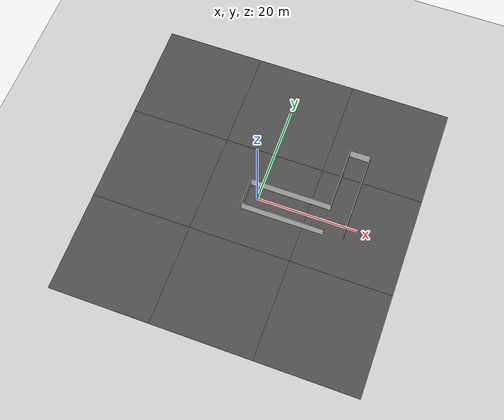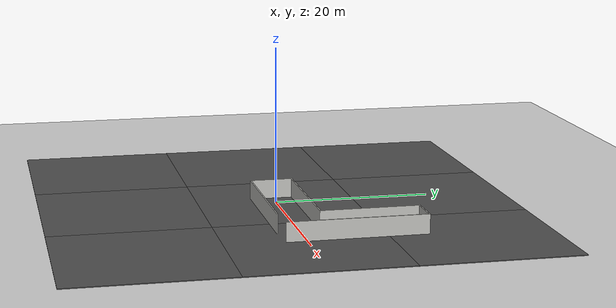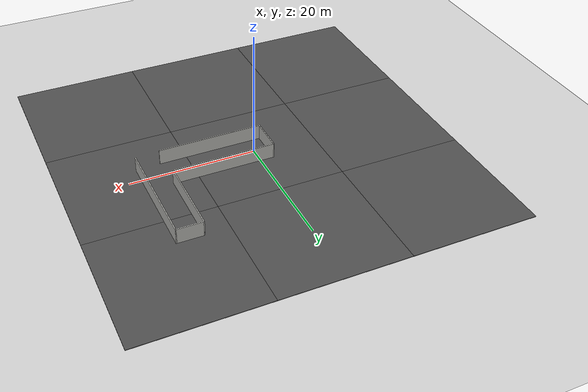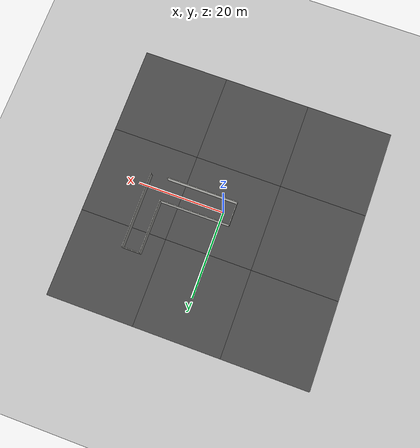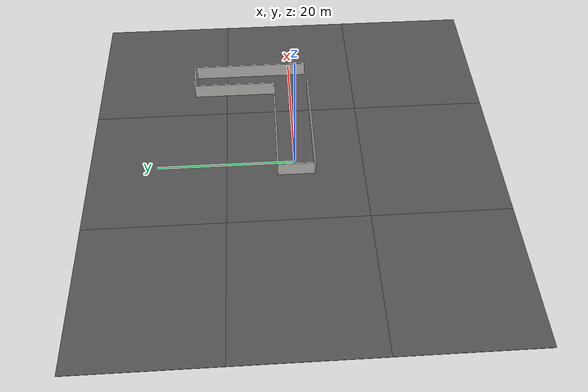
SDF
<sdf version="1.6">
 <world name="default">
  <light name="sun" type="directional">
   <pose>0 0 10 0 -0 0</pose>
   <diffuse>0.8 0.8 0.8 1</diffuse>
   <specular>0.2 0.2 0.2 1</specular>
   <attenuation>
    <range>1000</range>
    <constant>0.9</constant>
    <linear>0.01</linear>
    <quadratic>0.001</quadratic>
   </attenuation>
   <direction>-0.5 0.1 -0.9</direction>
  </light>
  <model name="ground_plane">
   <static>1</static>
   <link name="link">
    <collision name="collision">
     <geometry><plane><normal>0 0 1</normal><size>100 100</size></plane></geometry>
     <surface>
      <contact><collide_bitmask>65535</collide_bitmask></contact>
      <friction><ode><mu>100</mu><mu2>50</mu2></ode></friction>
     </surface>
    </collision>
    <visual name="visual">
     <cast_shadows>0</cast_shadows>
     <geometry><plane><normal>0 0 1</normal><size>100 100</size></plane></geometry>
     <material>
      <script><uri>file://media/materials/scripts/gazebo.material</uri><name>Gazebo/Grey</name></script>
     </material>
    </visual>
   </link>
  </model>
  <physics name="default_physics" default="0" type="ode">
   <ode>
    <solver>
     <type>quick</type>
     <iters>10</iters>
     <sor>1.3</sor>
     <use_dynamic_moi_rescaling>0</use_dynamic_moi_rescaling>
    </solver>
    <constraints>
     <cfm>0</cfm>
     <erp>0.2</erp>
     <contact_max_correcting_vel>100</contact_max_correcting_vel>
     <contact_surface_layer>0.001</contact_surface_layer>
    </constraints>
   </ode>
   <max_step_size>0.004</max_step_size>
   <real_time_factor>1</real_time_factor>
   <real_time_update_rate>250</real_time_update_rate>
  </physics>
  <gravity>0 0 -9.8066</gravity>
  <magnetic_field>6e-06 2.3e-05 -4.2e-05</magnetic_field>
  <atmosphere type="adiabatic"/>
  <scene><ambient>0.4 0.4 0.4 1</ambient><background>0.7 0.7 0.7 1</background><shadows>1</shadows></scene>
  <audio><device>default</device></audio>
  <spherical_coordinates>
   <surface_model>EARTH_WGS84</surface_model>
   <latitude_deg>0</latitude_deg>
   <longitude_deg>0</longitude_deg>
   <elevation>0</elevation>
   <heading_deg>0</heading_deg>
  </spherical_coordinates>
  <model name="asphalt_plane_0">
   <static>1</static>
   <link name="link">
    <collision name="collision"><geometry><box><size>20 20 0.1</size></box></geometry></collision>
    <visual name="visual">
     <cast_shadows>0</cast_shadows>
     <geometry><box><size>20 20 0.1</size></box></geometry>
     <material>
      <script>
       <uri>model://asphalt_plane/materials/scripts</uri>
       <uri>model://asphalt_plane/materials/textures</uri>
       <name>vrc/asphalt</name>
      </script>
     </material>
    </visual>
   </link>
   <pose>0 20 0 0 -0 0</pose>
  </model>
  <model name="asphalt_plane_1">
   <static>1</static>
   <link name="link">
    <collision name="collision"><geometry><box><size>20 20 0.1</size></box></geometry></collision>
    <visual name="visual">
     <cast_shadows>0</cast_shadows>
     <geometry><box><size>20 20 0.1</size></box></geometry>
     <material>
      <script>
       <uri>model://asphalt_plane/materials/scripts</uri>
       <uri>model://asphalt_plane/materials/textures</uri>
       <name>vrc/asphalt</name>
      </script>
     </material>
    </visual>
   </link>
   <pose>-20 0 0 0 -0 0</pose>
  </model>
  <model name="asphalt_plane_2">
   <static>1</static>
   <link name="link">
    <collision name="collision"><geometry><box><size>20 20 0.1</size></box></geometry></collision>
    <visual name="visual">
     <cast_shadows>0</cast_shadows>
     <geometry><box><size>20 20 0.1</size></box></geometry>
     <material>
      <script>
       <uri>model://asphalt_plane/materials/scripts</uri>
       <uri>model://asphalt_plane/materials/textures</uri>
       <name>vrc/asphalt</name>
      </script>
     </material>
    </visual>
   </link>
   <pose>0 -20 0 0 -0 0</pose>
  </model>
  <model name="asphalt_plane_3">
   <static>1</static>
   <link name="link">
    <collision name="collision"><geometry><box><size>20 20 0.1</size></box></geometry></collision>
    <visual name="visual">
     <cast_shadows>0</cast_shadows>
     <geometry><box><size>20 20 0.1</size></box></geometry>
     <material>
      <script>
       <uri>model://asphalt_plane/materials/scripts</uri>
       <uri>model://asphalt_plane/materials/textures</uri>
       <name>vrc/asphalt</name>
      </script>
     </material>
    </visual>
   </link>
   <pose>20 0 0 0 -0 0</pose>
  </model>
  <model name="asphalt_plane_4">
   <static>1</static>
   <link name="link">
    <collision name="collision"><geometry><box><size>20 20 0.1</size></box></geometry></collision>
    <visual name="visual">
     <cast_shadows>0</cast_shadows>
     <geometry><box><size>20 20 0.1</size></box></geometry>
     <material>
      <script>
       <uri>model://asphalt_plane/materials/scripts</uri>
       <uri>model://asphalt_plane/materials/textures</uri>
       <name>vrc/asphalt</name>
      </script>
     </material>
    </visual>
   </link>
   <pose>20 20 0 0 -0 0</pose>
  </model>
  <model name="asphalt_plane_5">
   <static>1</static>
   <link name="link">
    <collision name="collision"><geometry><box><size>20 20 0.1</size></box></geometry></collision>
    <visual name="visual">
     <cast_shadows>0</cast_shadows>
     <geometry><box><size>20 20 0.1</size></box></geometry>
     <material>
      <script>
       <uri>model://asphalt_plane/materials/scripts</uri>
       <uri>model://asphalt_plane/materials/textures</uri>
       <name>vrc/asphalt</name>
      </script>
     </material>
    </visual>
   </link>
   <pose>-20 20 0 0 -0 0</pose>
  </model>
  <model name="asphalt_plane_6">
   <static>1</static>
   <link name="link">
    <collision name="collision"><geometry><box><size>20 20 0.1</size></box></geometry></collision>
    <visual name="visual">
     <cast_shadows>0</cast_shadows>
     <geometry><box><size>20 20 0.1</size></box></geometry>
     <material>
      <script>
       <uri>model://asphalt_plane/materials/scripts</uri>
       <uri>model://asphalt_plane/materials/textures</uri>
       <name>vrc/asphalt</name>
      </script>
     </material>
    </visual>
   </link>
   <pose>-20 -20 0 0 -0 0</pose>
  </model>
  <model name="asphalt_plane_7">
   <static>1</static>
   <link name="link">
    <collision name="collision"><geometry><box><size>20 20 0.1</size></box></geometry></collision>
    <visual name="visual">
     <cast_shadows>0</cast_shadows>
     <geometry><box><size>20 20 0.1</size></box></geometry>
     <material>
      <script>
       <uri>model://asphalt_plane/materials/scripts</uri>
       <uri>model://asphalt_plane/materials/textures</uri>
       <name>vrc/asphalt</name>
      </script>
     </material>
    </visual>
   </link>
   <pose>20 -20 0 0 -0 0</pose>
  </model>
  <model name="asphalt_plane">
   <static>1</static>
   <link name="link">
    <collision name="collision"><geometry><box><size>20 20 0.1</size></box></geometry></collision>
    <visual name="visual">
     <cast_shadows>0</cast_shadows>
     <geometry><box><size>20 20 0.1</size></box></geometry>
     <material>
      <script>
       <uri>model://asphalt_plane/materials/scripts</uri>
       <uri>model://asphalt_plane/materials/textures</uri>
       <name>vrc/asphalt</name>
      </script>
     </material>
    </visual>
   </link>
  </model>
  <model name="darpa_easy">
   <pose>7.92639 6 0 0 -0 0</pose>
   <link name="Wall_10">
    <collision name="Wall_10_Collision">
     <geometry><box><size>17.5 0.15 2.5</size></box></geometry>
     <pose>0 0 1.25 0 -0 0</pose>
    </collision>
    <visual name="Wall_10_Visual">
     <pose>0 0 1.25 0 -0 0</pose>
     <geometry><box><size>17.5 0.15 2.5</size></box></geometry>
     <material>
      <script><uri>file://media/materials/scripts/gazebo.material</uri><name>Gazebo/CeilingTiled</name></script>
      <ambient>1 1 1 1</ambient>
     </material>
     <meta><layer>0</layer></meta>
    </visual>
    <pose>10.1 0.174999 0 0 -0 -1.5708</pose>
   </link>
   <link name="Wall_12">
    <collision name="Wall_12_Collision">
     <geometry><box><size>16.5 0.15 2.5</size></box></geometry>
     <pose>0 0 1.25 0 -0 0</pose>
    </collision>
    <visual name="Wall_12_Visual">
     <pose>0 0 1.25 0 -0 0</pose>
     <geometry><box><size>16.5 0.15 2.5</size></box></geometry>
     <material>
      <script><uri>file://media/materials/scripts/gazebo.material</uri><name>Gazebo/CeilingTiled</name></script>
      <ambient>1 1 1 1</ambient>
     </material>
     <meta><layer>0</layer></meta>
    </visual>
    <pose>-1.925 -8.85 0 0 -0 0</pose>
   </link>
   <link name="Wall_6">
    <collision name="Wall_6_Collision">
     <geometry><box><size>5.5 0.15 2.5</size></box></geometry>
     <pose>0 0 1.25 0 -0 0</pose>
    </collision>
    <visual name="Wall_6_Visual">
     <pose>0 0 1.25 0 -0 0</pose>
     <geometry><box><size>5.5 0.15 2.5</size></box></geometry>
     <material>
      <script><uri>file://media/materials/scripts/gazebo.material</uri><name>Gazebo/CeilingTiled</name></script>
      <ambient>1 1 1 1</ambient>
     </material>
     <meta><layer>0</layer></meta>
    </visual>
    <pose>-10.1 -6.175 0 0 -0 1.5708</pose>
   </link>
   <link name="Wall_7">
    <collision name="Wall_7_Collision">
     <geometry><box><size>16.25 0.15 2.5</size></box></geometry>
     <pose>0 0 1.25 0 -0 0</pose>
    </collision>
    <visual name="Wall_7_Visual">
     <pose>0 0 1.25 0 -0 0</pose>
     <geometry><box><size>16.25 0.15 2.5</size></box></geometry>
     <material>
      <script><uri>file://media/materials/scripts/gazebo.material</uri><name>Gazebo/CeilingTiled</name></script>
      <ambient>1 1 1 1</ambient>
     </material>
     <meta><layer>0</layer></meta>
    </visual>
    <pose>-2.05 -3.5 0 0 -0 0</pose>
   </link>
   <link name="Wall_8">
    <collision name="Wall_8_Collision">
     <geometry><box><size>12.5 0.15 2.5</size></box></geometry>
     <pose>0 0 1.25 0 -0 0</pose>
    </collision>
    <visual name="Wall_8_Visual">
     <pose>0 0 1.25 0 -0 0</pose>
     <geometry><box><size>12.5 0.15 2.5</size></box></geometry>
     <material>
      <script><uri>file://media/materials/scripts/gazebo.material</uri><name>Gazebo/CeilingTiled</name></script>
      <ambient>1 1 1 1</ambient>
     </material>
     <meta><layer>0</layer></meta>
    </visual>
    <pose>6 2.675 0 0 -0 1.5708</pose>
   </link>
   <link name="Wall_9">
    <collision name="Wall_9_Collision">
     <geometry><box><size>4.25 0.15 2.5</size></box></geometry>
     <pose>0 0 1.25 0 -0 0</pose>
    </collision>
    <visual name="Wall_9_Visual">
     <pose>0 0 1.25 0 -0 0</pose>
     <geometry><box><size>4.25 0.15 2.5</size></box></geometry>
     <material>
      <script><uri>file://media/materials/scripts/gazebo.material</uri><name>Gazebo/CeilingTiled</name></script>
      <ambient>1 1 1 1</ambient>
     </material>
     <meta><layer>0</layer></meta>
    </visual>
    <pose>8.05 8.85 0 0 -0 0</pose>
   </link>
   <static>1</static>
  </model>
 </world>
</sdf>
